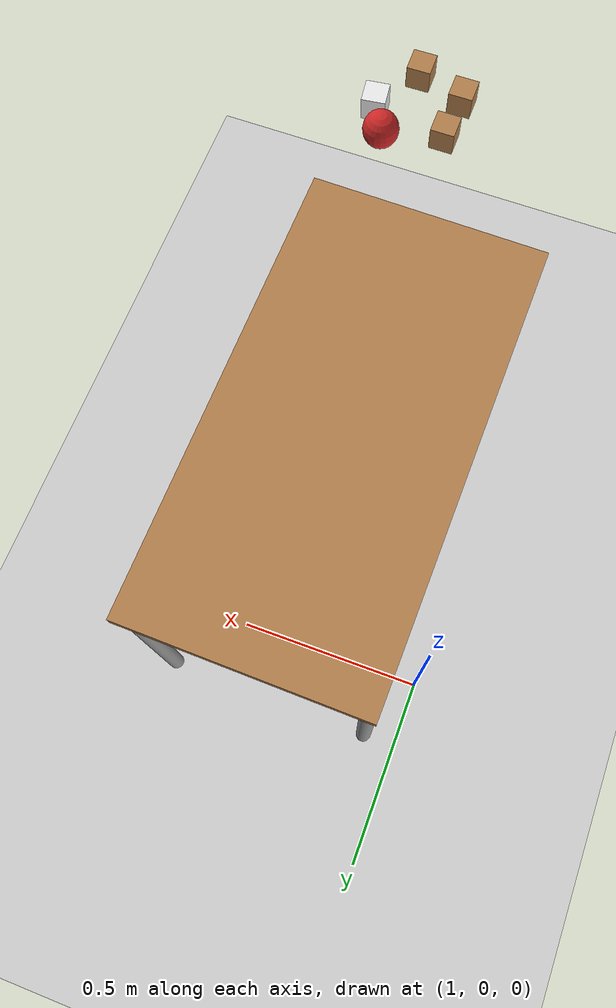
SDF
<sdf version="1.4">
 <world name="default">
  <model name="ground_plane">
   <static>1</static>
   <link name="link">
    <collision name="collision">
     <geometry><plane><normal>0 0 1</normal><size>100 100</size></plane></geometry>
     <surface><friction><ode><mu>100</mu><mu2>50</mu2></ode></friction></surface>
    </collision>
    <visual name="visual">
     <cast_shadows>0</cast_shadows>
     <geometry><plane><normal>0 0 1</normal><size>100 100</size></plane></geometry>
     <material>
      <script><uri>file://media/materials/scripts/gazebo.material</uri><name>Gazebo/Grey</name></script>
     </material>
    </visual>
    <velocity_decay><linear>0</linear><angular>0</angular></velocity_decay>
   </link>
  </model>
  <light name="sun" type="directional">
   <pose>0 0 10 0 -0 0</pose>
   <diffuse>0.8 0.8 0.8 1</diffuse>
   <specular>0.2 0.2 0.2 1</specular>
   <attenuation>
    <range>1000</range>
    <constant>0.9</constant>
    <linear>0.01</linear>
    <quadratic>0.001</quadratic>
   </attenuation>
   <direction>-0.5 0.1 -0.9</direction>
  </light>
  <physics type="ode">
   <real_time_update_rate>1000</real_time_update_rate>
   <gravity>0 0 -9.81</gravity>
   <max_step_size>0.001</max_step_size>
   <real_time_factor>1</real_time_factor>
  </physics>
  <scene><ambient>0.4 0.4 0.4 1</ambient><background>0.7 0.7 0.7 1</background><shadows>1</shadows></scene>
  <spherical_coordinates>
   <surface_model>EARTH_WGS84</surface_model>
   <latitude_deg>0</latitude_deg>
   <longitude_deg>0</longitude_deg>
   <elevation>0</elevation>
   <heading_deg>0</heading_deg>
  </spherical_coordinates>
  <model name="table">
   <static>1</static>
   <link name="link">
    <collision name="surface">
     <pose>0 0 0.64 0 -0 0</pose>
     <geometry><box><size>1.2 0.61 0.03</size></box></geometry>
     <surface><friction><ode><mu>0.6</mu><mu2>0.6</mu2></ode></friction></surface>
    </collision>
    <visual name="visual1">
     <pose>0 0 0.64 0 -0 0</pose>
     <geometry><box><size>1.2 0.61 0.03</size></box></geometry>
     <material>
      <script><uri>file://media/materials/scripts/gazebo.material</uri><name>Gazebo/Wood</name></script>
     </material>
    </visual>
    <collision name="front_left_leg">
     <pose>0.57 0.28 0.305 0 -0 0</pose>
     <geometry><cylinder><radius>0.02</radius><length>0.64</length></cylinder></geometry>
    </collision>
    <visual name="front_left_leg">
     <pose>0.57 0.28 0.305 0 -0 0</pose>
     <geometry><cylinder><radius>0.02</radius><length>0.64</length></cylinder></geometry>
     <material>
      <script><uri>file://media/materials/scripts/gazebo.material</uri><name>Gazebo/Grey</name></script>
     </material>
    </visual>
    <collision name="front_right_leg">
     <pose>0.57 -0.28 0.305 0 -0 0</pose>
     <geometry><cylinder><radius>0.02</radius><length>0.64</length></cylinder></geometry>
    </collision>
    <visual name="front_right_leg">
     <pose>0.57 -0.28 0.305 0 -0 0</pose>
     <geometry><cylinder><radius>0.02</radius><length>0.64</length></cylinder></geometry>
     <material>
      <script><uri>file://media/materials/scripts/gazebo.material</uri><name>Gazebo/Grey</name></script>
     </material>
    </visual>
    <collision name="back_right_leg">
     <pose>-0.57 -0.28 0.305 0 -0 0</pose>
     <geometry><cylinder><radius>0.02</radius><length>0.64</length></cylinder></geometry>
    </collision>
    <visual name="back_right_leg">
     <pose>-0.57 -0.28 0.305 0 -0 0</pose>
     <geometry><cylinder><radius>0.02</radius><length>0.64</length></cylinder></geometry>
     <material>
      <script><uri>file://media/materials/scripts/gazebo.material</uri><name>Gazebo/Grey</name></script>
     </material>
    </visual>
    <collision name="back_left_leg">
     <pose>0.57 0.28 0.305 0 -0 0</pose>
     <geometry><cylinder><radius>0.02</radius><length>0.64</length></cylinder></geometry>
    </collision>
    <visual name="back_left_leg">
     <pose>-0.57 0.28 0.305 0 -0 0</pose>
     <geometry><cylinder><radius>0.02</radius><length>0.64</length></cylinder></geometry>
     <material>
      <script><uri>file://media/materials/scripts/gazebo.material</uri><name>Gazebo/Grey</name></script>
     </material>
    </visual>
    <velocity_decay><linear>0</linear><angular>0</angular></velocity_decay>
   </link>
   <pose>1.35942 -0.401597 0 0 0 -1.58572</pose>
  </model>
  <model name="wood_cube_5cm">
   <link name="link">
    <pose>0 0 0.025 0 -0 0</pose>
    <inertial>
     <mass>0.0565</mass>
     <inertia>
      <ixx>2.35417e-05</ixx>
      <ixy>0</ixy>
      <ixz>0</ixz>
      <iyy>2.35417e-05</iyy>
      <iyz>0</iyz>
      <izz>2.35417e-05</izz>
     </inertia>
    </inertial>
    <collision name="collision">
     <geometry><box><size>0.05 0.05 0.05</size></box></geometry>
     <surface><contact><ode><max_vel>0.1</max_vel><min_depth>0.001</min_depth></ode></contact></surface>
    </collision>
    <visual name="visual">
     <geometry><box><size>0.05 0.05 0.05</size></box></geometry>
     <material>
      <script><uri>file://media/materials/scripts/gazebo.material</uri><name>Gazebo/White</name></script>
     </material>
    </visual>
    <velocity_decay><linear>0</linear><angular>0</angular></velocity_decay>
   </link>
   <pose>1.4842 -0.938263 1.01477 0.000347 0.008768 0.122347</pose>
   <static>0</static>
  </model>
  <model name="wood_cube_5cm_0">
   <link name="link">
    <pose>0 0 0.025 0 -0 0</pose>
    <inertial>
     <mass>0.0565</mass>
     <inertia>
      <ixx>2.35417e-05</ixx>
      <ixy>0</ixy>
      <ixz>0</ixz>
      <iyy>2.35417e-05</iyy>
      <iyz>0</iyz>
      <izz>2.35417e-05</izz>
     </inertia>
    </inertial>
    <collision name="collision">
     <geometry><box><size>0.05 0.05 0.05</size></box></geometry>
     <surface><contact><ode><max_vel>0.1</max_vel><min_depth>0.001</min_depth></ode></contact></surface>
    </collision>
    <visual name="visual">
     <geometry><box><size>0.05 0.05 0.05</size></box></geometry>
     <material>
      <script><uri>file://media/materials/scripts/gazebo.material</uri><name>Gazebo/Wood</name></script>
     </material>
    </visual>
    <velocity_decay><linear>0</linear><angular>0</angular></velocity_decay>
   </link>
   <pose>1.32012 -1.00894 1.015 5.6e-05 -5.6e-05 -6e-06</pose>
   <static>0</static>
  </model>
  <model name="wood_cube_5cm_1">
   <link name="link">
    <pose>0 0 0.025 0 -0 0</pose>
    <inertial>
     <mass>0.0565</mass>
     <inertia>
      <ixx>2.35417e-05</ixx>
      <ixy>0</ixy>
      <ixz>0</ixz>
      <iyy>2.35417e-05</iyy>
      <iyz>0</iyz>
      <izz>2.35417e-05</izz>
     </inertia>
    </inertial>
    <collision name="collision">
     <geometry><box><size>0.05 0.05 0.05</size></box></geometry>
     <surface><contact><ode><max_vel>0.1</max_vel><min_depth>0.001</min_depth></ode></contact></surface>
    </collision>
    <visual name="visual">
     <geometry><box><size>0.05 0.05 0.05</size></box></geometry>
     <material>
      <script><uri>file://media/materials/scripts/gazebo.material</uri><name>Gazebo/Wood</name></script>
     </material>
    </visual>
    <velocity_decay><linear>0</linear><angular>0</angular></velocity_decay>
   </link>
   <pose>1.30174 -0.912772 1.03976 1.56857 -1.56518 1.57296</pose>
   <static>0</static>
  </model>
  <model name="wood_cube_5cm_2">
   <link name="link">
    <pose>0 0 0.025 0 -0 0</pose>
    <inertial>
     <mass>0.0565</mass>
     <inertia>
      <ixx>2.35417e-05</ixx>
      <ixy>0</ixy>
      <ixz>0</ixz>
      <iyy>2.35417e-05</iyy>
      <iyz>0</iyz>
      <izz>2.35417e-05</izz>
     </inertia>
    </inertial>
    <collision name="collision">
     <geometry><box><size>0.05 0.05 0.05</size></box></geometry>
     <surface><contact><ode><max_vel>0.1</max_vel><min_depth>0.001</min_depth></ode></contact></surface>
    </collision>
    <visual name="visual">
     <geometry><box><size>0.05 0.05 0.05</size></box></geometry>
     <material>
      <script><uri>file://media/materials/scripts/gazebo.material</uri><name>Gazebo/Wood</name></script>
     </material>
    </visual>
    <velocity_decay><linear>0</linear><angular>0</angular></velocity_decay>
   </link>
   <pose>1.42103 -1.04329 1.01483 0.003669 -9.6e-05 0.014864</pose>
   <static>0</static>
  </model>
  <model name="cricket_ball">
   <link name="link">
    <pose>0 0 0.0375 0 -0 0</pose>
    <inertial>
     <mass>0.1467</mass>
     <inertia>
      <ixx>8.25187e-05</ixx>
      <ixy>0</ixy>
      <ixz>0</ixz>
      <iyy>8.25187e-05</iyy>
      <iyz>0</iyz>
      <izz>8.25187e-05</izz>
     </inertia>
    </inertial>
    <collision name="collision"><geometry><sphere><radius>0.0375</radius></sphere></geometry></collision>
    <visual name="visual">
     <geometry><sphere><radius>0.0375</radius></sphere></geometry>
     <material>
      <script><uri>file://media/materials/scripts/gazebo.material</uri><name>Gazebo/Red</name></script>
     </material>
    </visual>
    <velocity_decay><linear>0</linear><angular>0.005</angular></velocity_decay>
   </link>
   <pose>1.44771 -0.865943 1.015 0.000666 0.000109 5.86135e-24</pose>
   <static>0</static>
  </model>
 </world>
</sdf>
